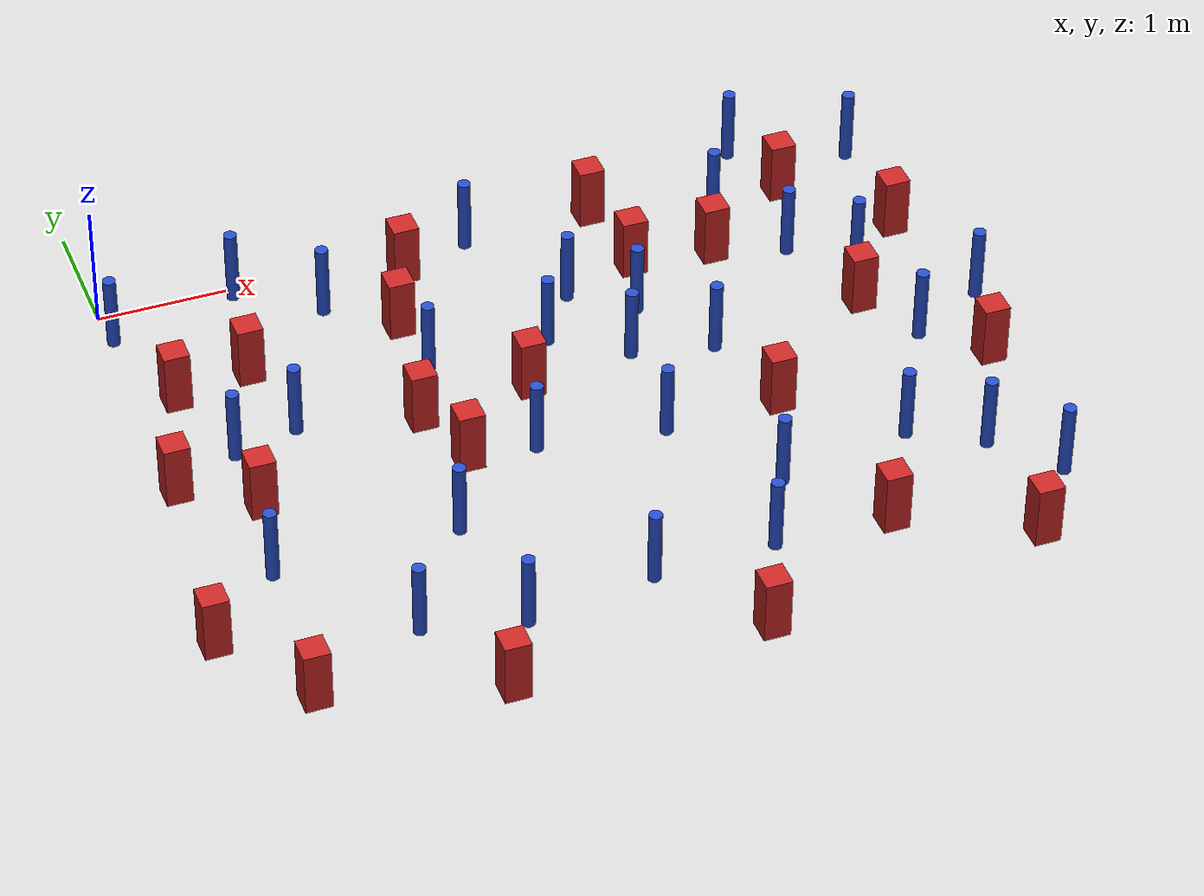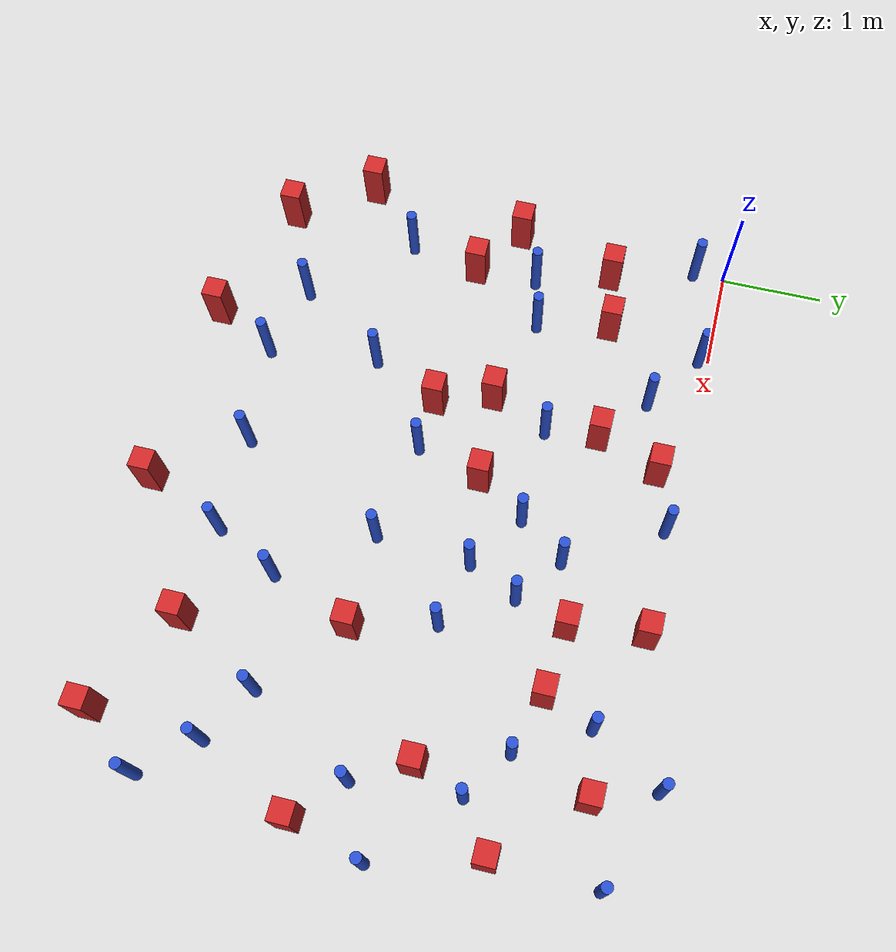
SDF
<sdf version="1.6">
 <model name="dense_82">
  <model name="square_post_obstacle3">
   <static>true</static>
   <pose>2.33314151365 -0.291361510585 -4.36207812815e-07 3.75137919937e-06 9.77721102514e-07 2.47381364184e-05</pose>
   <link name="link">
    <pose>0 0 0.25 0 -0 0</pose>
    <inertial>
     <mass>100</mass>
     <inertia>
      <ixx>0.166667</ixx>
      <ixy>0</ixy>
      <ixz>0</ixz>
      <iyy>0.166667</iyy>
      <iyz>0</iyz>
      <izz>0.166667</izz>
     </inertia>
    </inertial>
    <collision name="collision"><geometry><box><size>.2 .2 .5</size></box></geometry></collision>
    <visual name="visual">
     <geometry><box><size>.2 .2 .5</size></box></geometry>
     <material>
      <script><name>Gazebo/Red</name><uri>file://media/materials/scripts/gazebo.material</uri></script>
     </material>
    </visual>
   </link>
  </model>
  <model name="square_post_obstacle4">
   <static>true</static>
   <pose>-0.213089348339 -3.73600585675 -4.36207812815e-07 3.75137919937e-06 9.77721102514e-07 2.47381364184e-05</pose>
   <link name="link">
    <pose>0 0 0.25 0 -0 0</pose>
    <inertial>
     <mass>100</mass>
     <inertia>
      <ixx>0.166667</ixx>
      <ixy>0</ixy>
      <ixz>0</ixz>
      <iyy>0.166667</iyy>
      <iyz>0</iyz>
      <izz>0.166667</izz>
     </inertia>
    </inertial>
    <collision name="collision"><geometry><box><size>.2 .2 .5</size></box></geometry></collision>
    <visual name="visual">
     <geometry><box><size>.2 .2 .5</size></box></geometry>
     <material>
      <script><name>Gazebo/Red</name><uri>file://media/materials/scripts/gazebo.material</uri></script>
     </material>
    </visual>
   </link>
  </model>
  <model name="square_post_obstacle8">
   <static>true</static>
   <pose>0.871351405649 -1.02701307779 -4.36207812815e-07 3.75137919937e-06 9.77721102514e-07 2.47381364184e-05</pose>
   <link name="link">
    <pose>0 0 0.25 0 -0 0</pose>
    <inertial>
     <mass>100</mass>
     <inertia>
      <ixx>0.166667</ixx>
      <ixy>0</ixy>
      <ixz>0</ixz>
      <iyy>0.166667</iyy>
      <iyz>0</iyz>
      <izz>0.166667</izz>
     </inertia>
    </inertial>
    <collision name="collision"><geometry><box><size>.2 .2 .5</size></box></geometry></collision>
    <visual name="visual">
     <geometry><box><size>.2 .2 .5</size></box></geometry>
     <material>
      <script><name>Gazebo/Red</name><uri>file://media/materials/scripts/gazebo.material</uri></script>
     </material>
    </visual>
   </link>
  </model>
  <model name="pole_obstacle13">
   <static>true</static>
   <pose>0.0314348931454 -0.309550767715 -3.09024884793e-07 -7.19054271912e-07 -2.1131507514e-07 -1.93935509267e-07</pose>
   <link name="link">
    <pose>0 0 0.3 0 -0 0</pose>
    <inertial>
     <mass>1</mass>
     <inertia><ixx>0.145833</ixx><ixy>0</ixy><ixz>0</ixz><iyy>0.145833</iyy><iyz>0</iyz><izz>0.125</izz></inertia>
    </inertial>
    <collision name="collision">
     <geometry><cylinder><radius>0.05</radius><length>.6</length></cylinder></geometry>
    </collision>
    <visual name="visual">
     <geometry><cylinder><radius>0.05</radius><length>.6</length></cylinder></geometry>
     <material>
      <script><name>Gazebo/Blue</name><uri>file://media/materials/scripts/gazebo.material</uri></script>
     </material>
    </visual>
   </link>
  </model>
  <model name="pole_obstacle15">
   <static>true</static>
   <pose>2.59792775279 -2.53692966714 -3.09024884793e-07 -7.19054271912e-07 -2.11315075144e-07 -1.93935509271e-07</pose>
   <link name="link">
    <pose>0 0 0.3 0 -0 0</pose>
    <inertial>
     <mass>1</mass>
     <inertia><ixx>0.145833</ixx><ixy>0</ixy><ixz>0</ixz><iyy>0.145833</iyy><iyz>0</iyz><izz>0.125</izz></inertia>
    </inertial>
    <collision name="collision">
     <geometry><cylinder><radius>0.05</radius><length>.6</length></cylinder></geometry>
    </collision>
    <visual name="visual">
     <geometry><cylinder><radius>0.05</radius><length>.6</length></cylinder></geometry>
     <material>
      <script><name>Gazebo/Blue</name><uri>file://media/materials/scripts/gazebo.material</uri></script>
     </material>
    </visual>
   </link>
  </model>
  <model name="pole_obstacle20">
   <static>true</static>
   <pose>1.17382200154 -4.06774847225 -3.09024884793e-07 -7.19054271912e-07 -2.11315075134e-07 -1.93935509265e-07</pose>
   <link name="link">
    <pose>0 0 0.3 0 -0 0</pose>
    <inertial>
     <mass>1</mass>
     <inertia><ixx>0.145833</ixx><ixy>0</ixy><ixz>0</ixz><iyy>0.145833</iyy><iyz>0</iyz><izz>0.125</izz></inertia>
    </inertial>
    <collision name="collision">
     <geometry><cylinder><radius>0.05</radius><length>.6</length></cylinder></geometry>
    </collision>
    <visual name="visual">
     <geometry><cylinder><radius>0.05</radius><length>.6</length></cylinder></geometry>
     <material>
      <script><name>Gazebo/Blue</name><uri>file://media/materials/scripts/gazebo.material</uri></script>
     </material>
    </visual>
   </link>
  </model>
  <model name="pole_obstacle38">
   <static>true</static>
   <pose>2.89941433619 -4.12505029738 -3.09024884793e-07 -7.19054271912e-07 -2.11315075134e-07 -1.93935509266e-07</pose>
   <link name="link">
    <pose>0 0 0.3 0 -0 0</pose>
    <inertial>
     <mass>1</mass>
     <inertia><ixx>0.145833</ixx><ixy>0</ixy><ixz>0</ixz><iyy>0.145833</iyy><iyz>0</iyz><izz>0.125</izz></inertia>
    </inertial>
    <collision name="collision">
     <geometry><cylinder><radius>0.05</radius><length>.6</length></cylinder></geometry>
    </collision>
    <visual name="visual">
     <geometry><cylinder><radius>0.05</radius><length>.6</length></cylinder></geometry>
     <material>
      <script><name>Gazebo/Blue</name><uri>file://media/materials/scripts/gazebo.material</uri></script>
     </material>
    </visual>
   </link>
  </model>
  <model name="pole_obstacle41">
   <static>true</static>
   <pose>3.5569197689 -2.68449451815 -3.09024884793e-07 -7.19054271912e-07 -2.11315075144e-07 -1.93935509271e-07</pose>
   <link name="link">
    <pose>0 0 0.3 0 -0 0</pose>
    <inertial>
     <mass>1</mass>
     <inertia><ixx>0.145833</ixx><ixy>0</ixy><ixz>0</ixz><iyy>0.145833</iyy><iyz>0</iyz><izz>0.125</izz></inertia>
    </inertial>
    <collision name="collision">
     <geometry><cylinder><radius>0.05</radius><length>.6</length></cylinder></geometry>
    </collision>
    <visual name="visual">
     <geometry><cylinder><radius>0.05</radius><length>.6</length></cylinder></geometry>
     <material>
      <script><name>Gazebo/Blue</name><uri>file://media/materials/scripts/gazebo.material</uri></script>
     </material>
    </visual>
   </link>
  </model>
  <model name="pole_obstacle43">
   <static>true</static>
   <pose>5.22394746204 0.251731931537 -3.09024884793e-07 -7.19054271912e-07 -2.11315075135e-07 -1.93935509265e-07</pose>
   <link name="link">
    <pose>0 0 0.3 0 -0 0</pose>
    <inertial>
     <mass>1</mass>
     <inertia><ixx>0.145833</ixx><ixy>0</ixy><ixz>0</ixz><iyy>0.145833</iyy><iyz>0</iyz><izz>0.125</izz></inertia>
    </inertial>
    <collision name="collision">
     <geometry><cylinder><radius>0.05</radius><length>.6</length></cylinder></geometry>
    </collision>
    <visual name="visual">
     <geometry><cylinder><radius>0.05</radius><length>.6</length></cylinder></geometry>
     <material>
      <script><name>Gazebo/Blue</name><uri>file://media/materials/scripts/gazebo.material</uri></script>
     </material>
    </visual>
   </link>
  </model>
  <model name="pole_obstacle46">
   <static>true</static>
   <pose>5.18515565734 -3.32202096976 -3.09024884793e-07 -7.19054271912e-07 -2.11315075144e-07 -1.93935509269e-07</pose>
   <link name="link">
    <pose>0 0 0.3 0 -0 0</pose>
    <inertial>
     <mass>1</mass>
     <inertia><ixx>0.145833</ixx><ixy>0</ixy><ixz>0</ixz><iyy>0.145833</iyy><iyz>0</iyz><izz>0.125</izz></inertia>
    </inertial>
    <collision name="collision">
     <geometry><cylinder><radius>0.05</radius><length>.6</length></cylinder></geometry>
    </collision>
    <visual name="visual">
     <geometry><cylinder><radius>0.05</radius><length>.6</length></cylinder></geometry>
     <material>
      <script><name>Gazebo/Blue</name><uri>file://media/materials/scripts/gazebo.material</uri></script>
     </material>
    </visual>
   </link>
  </model>
  <model name="pole_obstacle47">
   <static>true</static>
   <pose>5.19799344406 -1.02992889069 -3.09024884793e-07 -7.19054271912e-07 -2.11315075127e-07 -1.93935509262e-07</pose>
   <link name="link">
    <pose>0 0 0.3 0 -0 0</pose>
    <inertial>
     <mass>1</mass>
     <inertia><ixx>0.145833</ixx><ixy>0</ixy><ixz>0</ixz><iyy>0.145833</iyy><iyz>0</iyz><izz>0.125</izz></inertia>
    </inertial>
    <collision name="collision">
     <geometry><cylinder><radius>0.05</radius><length>.6</length></cylinder></geometry>
    </collision>
    <visual name="visual">
     <geometry><cylinder><radius>0.05</radius><length>.6</length></cylinder></geometry>
     <material>
      <script><name>Gazebo/Blue</name><uri>file://media/materials/scripts/gazebo.material</uri></script>
     </material>
    </visual>
   </link>
  </model>
  <model name="pole_obstacle49">
   <static>true</static>
   <pose>4.24682617966 -1.91908120827 -3.09024884793e-07 -7.19054271912e-07 -2.11315075124e-07 -1.93935509261e-07</pose>
   <link name="link">
    <pose>0 0 0.3 0 -0 0</pose>
    <inertial>
     <mass>1</mass>
     <inertia><ixx>0.145833</ixx><ixy>0</ixy><ixz>0</ixz><iyy>0.145833</iyy><iyz>0</iyz><izz>0.125</izz></inertia>
    </inertial>
    <collision name="collision">
     <geometry><cylinder><radius>0.05</radius><length>.6</length></cylinder></geometry>
    </collision>
    <visual name="visual">
     <geometry><cylinder><radius>0.05</radius><length>.6</length></cylinder></geometry>
     <material>
      <script><name>Gazebo/Blue</name><uri>file://media/materials/scripts/gazebo.material</uri></script>
     </material>
    </visual>
   </link>
  </model>
  <model name="pole_obstacle53">
   <static>true</static>
   <pose>1.62476365895 -0.502507730217 -3.09024884793e-07 -7.19054271912e-07 -2.11315075135e-07 -1.93935509266e-07</pose>
   <link name="link">
    <pose>0 0 0.3 0 -0 0</pose>
    <inertial>
     <mass>1</mass>
     <inertia><ixx>0.145833</ixx><ixy>0</ixy><ixz>0</ixz><iyy>0.145833</iyy><iyz>0</iyz><izz>0.125</izz></inertia>
    </inertial>
    <collision name="collision">
     <geometry><cylinder><radius>0.05</radius><length>.6</length></cylinder></geometry>
    </collision>
    <visual name="visual">
     <geometry><cylinder><radius>0.05</radius><length>.6</length></cylinder></geometry>
     <material>
      <script><name>Gazebo/Blue</name><uri>file://media/materials/scripts/gazebo.material</uri></script>
     </material>
    </visual>
   </link>
  </model>
  <model name="square_post_obstacle42">
   <static>true</static>
   <pose>0.278952914524 -1.13049004628 -4.36207812815e-07 3.75137919937e-06 9.77721102514e-07 2.47381364184e-05</pose>
   <link name="link">
    <pose>0 0 0.25 0 -0 0</pose>
    <inertial>
     <mass>100</mass>
     <inertia>
      <ixx>0.166667</ixx>
      <ixy>0</ixy>
      <ixz>0</ixz>
      <iyy>0.166667</iyy>
      <iyz>0</iyz>
      <izz>0.166667</izz>
     </inertia>
    </inertial>
    <collision name="collision"><geometry><box><size>.2 .2 .5</size></box></geometry></collision>
    <visual name="visual">
     <geometry><box><size>.2 .2 .5</size></box></geometry>
     <material>
      <script><name>Gazebo/Red</name><uri>file://media/materials/scripts/gazebo.material</uri></script>
     </material>
    </visual>
   </link>
  </model>
  <model name="square_post_obstacle47">
   <static>true</static>
   <pose>4.70579254479 -4.16038542556 -4.36207812815e-07 3.75137919937e-06 9.77721102514e-07 2.47381364184e-05</pose>
   <link name="link">
    <pose>0 0 0.25 0 -0 0</pose>
    <inertial>
     <mass>100</mass>
     <inertia>
      <ixx>0.166667</ixx>
      <ixy>0</ixy>
      <ixz>0</ixz>
      <iyy>0.166667</iyy>
      <iyz>0</iyz>
      <izz>0.166667</izz>
     </inertia>
    </inertial>
    <collision name="collision"><geometry><box><size>.2 .2 .5</size></box></geometry></collision>
    <visual name="visual">
     <geometry><box><size>.2 .2 .5</size></box></geometry>
     <material>
      <script><name>Gazebo/Red</name><uri>file://media/materials/scripts/gazebo.material</uri></script>
     </material>
    </visual>
   </link>
  </model>
  <model name="pole_obstacle63">
   <static>true</static>
   <pose>3.4145873288 -0.976649345499 -3.09024884793e-07 -7.19054271912e-07 -2.11315075118e-07 -1.93935509258e-07</pose>
   <link name="link">
    <pose>0 0 0.3 0 -0 0</pose>
    <inertial>
     <mass>1</mass>
     <inertia><ixx>0.145833</ixx><ixy>0</ixy><ixz>0</ixz><iyy>0.145833</iyy><iyz>0</iyz><izz>0.125</izz></inertia>
    </inertial>
    <collision name="collision">
     <geometry><cylinder><radius>0.05</radius><length>.6</length></cylinder></geometry>
    </collision>
    <visual name="visual">
     <geometry><cylinder><radius>0.05</radius><length>.6</length></cylinder></geometry>
     <material>
      <script><name>Gazebo/Blue</name><uri>file://media/materials/scripts/gazebo.material</uri></script>
     </material>
    </visual>
   </link>
  </model>
  <model name="square_post_obstacle50">
   <static>true</static>
   <pose>5.65852767724 -4.65467436138 -4.36207812815e-07 3.75137919937e-06 9.77721102514e-07 2.47381364184e-05</pose>
   <link name="link">
    <pose>0 0 0.25 0 -0 0</pose>
    <inertial>
     <mass>100</mass>
     <inertia>
      <ixx>0.166667</ixx>
      <ixy>0</ixy>
      <ixz>0</ixz>
      <iyy>0.166667</iyy>
      <iyz>0</iyz>
      <izz>0.166667</izz>
     </inertia>
    </inertial>
    <collision name="collision"><geometry><box><size>.2 .2 .5</size></box></geometry></collision>
    <visual name="visual">
     <geometry><box><size>.2 .2 .5</size></box></geometry>
     <material>
      <script><name>Gazebo/Red</name><uri>file://media/materials/scripts/gazebo.material</uri></script>
     </material>
    </visual>
   </link>
  </model>
  <model name="pole_obstacle68">
   <static>true</static>
   <pose>0.381886724583 -3.1783384255 -3.09024884793e-07 -7.19054271912e-07 -2.11315075129e-07 -1.93935509263e-07</pose>
   <link name="link">
    <pose>0 0 0.3 0 -0 0</pose>
    <inertial>
     <mass>1</mass>
     <inertia><ixx>0.145833</ixx><ixy>0</ixy><ixz>0</ixz><iyy>0.145833</iyy><iyz>0</iyz><izz>0.125</izz></inertia>
    </inertial>
    <collision name="collision">
     <geometry><cylinder><radius>0.05</radius><length>.6</length></cylinder></geometry>
    </collision>
    <visual name="visual">
     <geometry><cylinder><radius>0.05</radius><length>.6</length></cylinder></geometry>
     <material>
      <script><name>Gazebo/Blue</name><uri>file://media/materials/scripts/gazebo.material</uri></script>
     </material>
    </visual>
   </link>
  </model>
  <model name="square_post_obstacle56">
   <static>true</static>
   <pose>5.41629758318 -0.316270551708 -4.36207812815e-07 3.75137919937e-06 9.77721102514e-07 2.47381364184e-05</pose>
   <link name="link">
    <pose>0 0 0.25 0 -0 0</pose>
    <inertial>
     <mass>100</mass>
     <inertia>
      <ixx>0.166667</ixx>
      <ixy>0</ixy>
      <ixz>0</ixz>
      <iyy>0.166667</iyy>
      <iyz>0</iyz>
      <izz>0.166667</izz>
     </inertia>
    </inertial>
    <collision name="collision"><geometry><box><size>.2 .2 .5</size></box></geometry></collision>
    <visual name="visual">
     <geometry><box><size>.2 .2 .5</size></box></geometry>
     <material>
      <script><name>Gazebo/Red</name><uri>file://media/materials/scripts/gazebo.material</uri></script>
     </material>
    </visual>
   </link>
  </model>
  <model name="square_post_obstacle63">
   <static>true</static>
   <pose>2.08169823434 -2.50607635694 -4.36207812815e-07 3.75137919937e-06 9.77721102514e-07 2.47381364184e-05</pose>
   <link name="link">
    <pose>0 0 0.25 0 -0 0</pose>
    <inertial>
     <mass>100</mass>
     <inertia>
      <ixx>0.166667</ixx>
      <ixy>0</ixy>
      <ixz>0</ixz>
      <iyy>0.166667</iyy>
      <iyz>0</iyz>
      <izz>0.166667</izz>
     </inertia>
    </inertial>
    <collision name="collision"><geometry><box><size>.2 .2 .5</size></box></geometry></collision>
    <visual name="visual">
     <geometry><box><size>.2 .2 .5</size></box></geometry>
     <material>
      <script><name>Gazebo/Red</name><uri>file://media/materials/scripts/gazebo.material</uri></script>
     </material>
    </visual>
   </link>
  </model>
  <model name="square_post_obstacle64">
   <static>true</static>
   <pose>1.58521656977 -4.85045739335 -4.36207812815e-07 3.75137919937e-06 9.77721102514e-07 2.47381364184e-05</pose>
   <link name="link">
    <pose>0 0 0.25 0 -0 0</pose>
    <inertial>
     <mass>100</mass>
     <inertia>
      <ixx>0.166667</ixx>
      <ixy>0</ixy>
      <ixz>0</ixz>
      <iyy>0.166667</iyy>
      <iyz>0</iyz>
      <izz>0.166667</izz>
     </inertia>
    </inertial>
    <collision name="collision"><geometry><box><size>.2 .2 .5</size></box></geometry></collision>
    <visual name="visual">
     <geometry><box><size>.2 .2 .5</size></box></geometry>
     <material>
      <script><name>Gazebo/Red</name><uri>file://media/materials/scripts/gazebo.material</uri></script>
     </material>
    </visual>
   </link>
  </model>
  <model name="pole_obstacle77">
   <static>true</static>
   <pose>6.34259070733 -2.00874868817 -3.09024884793e-07 -7.19054271912e-07 -2.11315075132e-07 -1.93935509263e-07</pose>
   <link name="link">
    <pose>0 0 0.3 0 -0 0</pose>
    <inertial>
     <mass>1</mass>
     <inertia><ixx>0.145833</ixx><ixy>0</ixy><ixz>0</ixz><iyy>0.145833</iyy><iyz>0</iyz><izz>0.125</izz></inertia>
    </inertial>
    <collision name="collision">
     <geometry><cylinder><radius>0.05</radius><length>.6</length></cylinder></geometry>
    </collision>
    <visual name="visual">
     <geometry><cylinder><radius>0.05</radius><length>.6</length></cylinder></geometry>
     <material>
      <script><name>Gazebo/Blue</name><uri>file://media/materials/scripts/gazebo.material</uri></script>
     </material>
    </visual>
   </link>
  </model>
  <model name="square_post_obstacle72">
   <static>true</static>
   <pose>6.13785445286 -2.70367544326 -4.36207812815e-07 3.75137919937e-06 9.77721102514e-07 2.47381364184e-05</pose>
   <link name="link">
    <pose>0 0 0.25 0 -0 0</pose>
    <inertial>
     <mass>100</mass>
     <inertia>
      <ixx>0.166667</ixx>
      <ixy>0</ixy>
      <ixz>0</ixz>
      <iyy>0.166667</iyy>
      <iyz>0</iyz>
      <izz>0.166667</izz>
     </inertia>
    </inertial>
    <collision name="collision"><geometry><box><size>.2 .2 .5</size></box></geometry></collision>
    <visual name="visual">
     <geometry><box><size>.2 .2 .5</size></box></geometry>
     <material>
      <script><name>Gazebo/Red</name><uri>file://media/materials/scripts/gazebo.material</uri></script>
     </material>
    </visual>
   </link>
  </model>
  <model name="square_post_obstacle84">
   <static>true</static>
   <pose>0.517862594368 -2.47184420044 -4.36207812815e-07 3.75137919937e-06 9.77721102514e-07 2.47381364184e-05</pose>
   <link name="link">
    <pose>0 0 0.25 0 -0 0</pose>
    <inertial>
     <mass>100</mass>
     <inertia>
      <ixx>0.166667</ixx>
      <ixy>0</ixy>
      <ixz>0</ixz>
      <iyy>0.166667</iyy>
      <iyz>0</iyz>
      <izz>0.166667</izz>
     </inertia>
    </inertial>
    <collision name="collision"><geometry><box><size>.2 .2 .5</size></box></geometry></collision>
    <visual name="visual">
     <geometry><box><size>.2 .2 .5</size></box></geometry>
     <material>
      <script><name>Gazebo/Red</name><uri>file://media/materials/scripts/gazebo.material</uri></script>
     </material>
    </visual>
   </link>
  </model>
  <model name="pole_obstacle92">
   <static>true</static>
   <pose>1.0344895102 -0.0960324451925 -3.09024884793e-07 -7.19054271912e-07 -2.11315075134e-07 -1.93935509265e-07</pose>
   <link name="link">
    <pose>0 0 0.3 0 -0 0</pose>
    <inertial>
     <mass>1</mass>
     <inertia><ixx>0.145833</ixx><ixy>0</ixy><ixz>0</ixz><iyy>0.145833</iyy><iyz>0</iyz><izz>0.125</izz></inertia>
    </inertial>
    <collision name="collision">
     <geometry><cylinder><radius>0.05</radius><length>.6</length></cylinder></geometry>
    </collision>
    <visual name="visual">
     <geometry><cylinder><radius>0.05</radius><length>.6</length></cylinder></geometry>
     <material>
      <script><name>Gazebo/Blue</name><uri>file://media/materials/scripts/gazebo.material</uri></script>
     </material>
    </visual>
   </link>
  </model>
  <model name="pole_obstacle99">
   <static>true</static>
   <pose>2.15478365586 -1.40693440886 -3.09024884793e-07 -7.19054271912e-07 -2.11315075122e-07 -1.93935509259e-07</pose>
   <link name="link">
    <pose>0 0 0.3 0 -0 0</pose>
    <inertial>
     <mass>1</mass>
     <inertia><ixx>0.145833</ixx><ixy>0</ixy><ixz>0</ixz><iyy>0.145833</iyy><iyz>0</iyz><izz>0.125</izz></inertia>
    </inertial>
    <collision name="collision">
     <geometry><cylinder><radius>0.05</radius><length>.6</length></cylinder></geometry>
    </collision>
    <visual name="visual">
     <geometry><cylinder><radius>0.05</radius><length>.6</length></cylinder></geometry>
     <material>
      <script><name>Gazebo/Blue</name><uri>file://media/materials/scripts/gazebo.material</uri></script>
     </material>
    </visual>
   </link>
  </model>
  <model name="square_post_obstacle101">
   <static>true</static>
   <pose>3.90916366934 -0.104227812113 -4.36207812815e-07 3.75137919937e-06 9.77721102514e-07 2.47381364184e-05</pose>
   <link name="link">
    <pose>0 0 0.25 0 -0 0</pose>
    <inertial>
     <mass>100</mass>
     <inertia>
      <ixx>0.166667</ixx>
      <ixy>0</ixy>
      <ixz>0</ixz>
      <iyy>0.166667</iyy>
      <iyz>0</iyz>
      <izz>0.166667</izz>
     </inertia>
    </inertial>
    <collision name="collision"><geometry><box><size>.2 .2 .5</size></box></geometry></collision>
    <visual name="visual">
     <geometry><box><size>.2 .2 .5</size></box></geometry>
     <material>
      <script><name>Gazebo/Red</name><uri>file://media/materials/scripts/gazebo.material</uri></script>
     </material>
    </visual>
   </link>
  </model>
  <model name="pole_obstacle112">
   <static>true</static>
   <pose>1.77823148418 -3.18313676283 -3.09024884793e-07 -7.19054271912e-07 -2.11315075132e-07 -1.93935509263e-07</pose>
   <link name="link">
    <pose>0 0 0.3 0 -0 0</pose>
    <inertial>
     <mass>1</mass>
     <inertia><ixx>0.145833</ixx><ixy>0</ixy><ixz>0</ixz><iyy>0.145833</iyy><iyz>0</iyz><izz>0.125</izz></inertia>
    </inertial>
    <collision name="collision">
     <geometry><cylinder><radius>0.05</radius><length>.6</length></cylinder></geometry>
    </collision>
    <visual name="visual">
     <geometry><cylinder><radius>0.05</radius><length>.6</length></cylinder></geometry>
     <material>
      <script><name>Gazebo/Blue</name><uri>file://media/materials/scripts/gazebo.material</uri></script>
     </material>
    </visual>
   </link>
  </model>
  <model name="square_post_obstacle120">
   <static>true</static>
   <pose>3.99590210295 -0.807621451331 -4.36207812815e-07 3.75137919937e-06 9.77721102514e-07 2.47381364184e-05</pose>
   <link name="link">
    <pose>0 0 0.25 0 -0 0</pose>
    <inertial>
     <mass>100</mass>
     <inertia>
      <ixx>0.166667</ixx>
      <ixy>0</ixy>
      <ixz>0</ixz>
      <iyy>0.166667</iyy>
      <iyz>0</iyz>
      <izz>0.166667</izz>
     </inertia>
    </inertial>
    <collision name="collision"><geometry><box><size>.2 .2 .5</size></box></geometry></collision>
    <visual name="visual">
     <geometry><box><size>.2 .2 .5</size></box></geometry>
     <material>
      <script><name>Gazebo/Red</name><uri>file://media/materials/scripts/gazebo.material</uri></script>
     </material>
    </visual>
   </link>
  </model>
  <model name="pole_obstacle128">
   <static>true</static>
   <pose>5.7409687875 -2.31245963606 -3.09024884793e-07 -7.19054271912e-07 -2.11315075144e-07 -1.93935509269e-07</pose>
   <link name="link">
    <pose>0 0 0.3 0 -0 0</pose>
    <inertial>
     <mass>1</mass>
     <inertia><ixx>0.145833</ixx><ixy>0</ixy><ixz>0</ixz><iyy>0.145833</iyy><iyz>0</iyz><izz>0.125</izz></inertia>
    </inertial>
    <collision name="collision">
     <geometry><cylinder><radius>0.05</radius><length>.6</length></cylinder></geometry>
    </collision>
    <visual name="visual">
     <geometry><cylinder><radius>0.05</radius><length>.6</length></cylinder></geometry>
     <material>
      <script><name>Gazebo/Blue</name><uri>file://media/materials/scripts/gazebo.material</uri></script>
     </material>
    </visual>
   </link>
  </model>
  <model name="square_post_obstacle125">
   <static>true</static>
   <pose>3.47955481679 -4.88890324637 -4.36207812815e-07 3.75137919937e-06 9.77721102514e-07 2.47381364184e-05</pose>
   <link name="link">
    <pose>0 0 0.25 0 -0 0</pose>
    <inertial>
     <mass>100</mass>
     <inertia>
      <ixx>0.166667</ixx>
      <ixy>0</ixy>
      <ixz>0</ixz>
      <iyy>0.166667</iyy>
      <iyz>0</iyz>
      <izz>0.166667</izz>
     </inertia>
    </inertial>
    <collision name="collision"><geometry><box><size>.2 .2 .5</size></box></geometry></collision>
    <visual name="visual">
     <geometry><box><size>.2 .2 .5</size></box></geometry>
     <material>
      <script><name>Gazebo/Red</name><uri>file://media/materials/scripts/gazebo.material</uri></script>
     </material>
    </visual>
   </link>
  </model>
  <model name="square_post_obstacle130">
   <static>true</static>
   <pose>1.90485653981 -1.96566548851 -4.36207812815e-07 3.75137919937e-06 9.77721102514e-07 2.47381364184e-05</pose>
   <link name="link">
    <pose>0 0 0.25 0 -0 0</pose>
    <inertial>
     <mass>100</mass>
     <inertia>
      <ixx>0.166667</ixx>
      <ixy>0</ixy>
      <ixz>0</ixz>
      <iyy>0.166667</iyy>
      <iyz>0</iyz>
      <izz>0.166667</izz>
     </inertia>
    </inertial>
    <collision name="collision"><geometry><box><size>.2 .2 .5</size></box></geometry></collision>
    <visual name="visual">
     <geometry><box><size>.2 .2 .5</size></box></geometry>
     <material>
      <script><name>Gazebo/Red</name><uri>file://media/materials/scripts/gazebo.material</uri></script>
     </material>
    </visual>
   </link>
  </model>
  <model name="square_post_obstacle131">
   <static>true</static>
   <pose>4.43698444354 -2.68411102263 -4.36207812815e-07 3.75137919937e-06 9.77721102514e-07 2.47381364184e-05</pose>
   <link name="link">
    <pose>0 0 0.25 0 -0 0</pose>
    <inertial>
     <mass>100</mass>
     <inertia>
      <ixx>0.166667</ixx>
      <ixy>0</ixy>
      <ixz>0</ixz>
      <iyy>0.166667</iyy>
      <iyz>0</iyz>
      <izz>0.166667</izz>
     </inertia>
    </inertial>
    <collision name="collision"><geometry><box><size>.2 .2 .5</size></box></geometry></collision>
    <visual name="visual">
     <geometry><box><size>.2 .2 .5</size></box></geometry>
     <material>
      <script><name>Gazebo/Red</name><uri>file://media/materials/scripts/gazebo.material</uri></script>
     </material>
    </visual>
   </link>
  </model>
  <model name="square_post_obstacle132">
   <static>true</static>
   <pose>0.27884176633 -4.46703697124 -4.36207812815e-07 3.75137919937e-06 9.77721102514e-07 2.47381364184e-05</pose>
   <link name="link">
    <pose>0 0 0.25 0 -0 0</pose>
    <inertial>
     <mass>100</mass>
     <inertia>
      <ixx>0.166667</ixx>
      <ixy>0</ixy>
      <ixz>0</ixz>
      <iyy>0.166667</iyy>
      <iyz>0</iyz>
      <izz>0.166667</izz>
     </inertia>
    </inertial>
    <collision name="collision"><geometry><box><size>.2 .2 .5</size></box></geometry></collision>
    <visual name="visual">
     <geometry><box><size>.2 .2 .5</size></box></geometry>
     <material>
      <script><name>Gazebo/Red</name><uri>file://media/materials/scripts/gazebo.material</uri></script>
     </material>
    </visual>
   </link>
  </model>
  <model name="pole_obstacle136">
   <static>true</static>
   <pose>4.8364935643 -0.397707945928 -3.09024884793e-07 -7.19054271912e-07 -2.11315075138e-07 -1.93935509266e-07</pose>
   <link name="link">
    <pose>0 0 0.3 0 -0 0</pose>
    <inertial>
     <mass>1</mass>
     <inertia><ixx>0.145833</ixx><ixy>0</ixy><ixz>0</ixz><iyy>0.145833</iyy><iyz>0</iyz><izz>0.125</izz></inertia>
    </inertial>
    <collision name="collision">
     <geometry><cylinder><radius>0.05</radius><length>.6</length></cylinder></geometry>
    </collision>
    <visual name="visual">
     <geometry><cylinder><radius>0.05</radius><length>.6</length></cylinder></geometry>
     <material>
      <script><name>Gazebo/Blue</name><uri>file://media/materials/scripts/gazebo.material</uri></script>
     </material>
    </visual>
   </link>
  </model>
  <model name="square_post_obstacle133">
   <static>true</static>
   <pose>6.06480743797 -1.03677569847 -4.36207812815e-07 3.75137919937e-06 9.77721102514e-07 2.47381364184e-05</pose>
   <link name="link">
    <pose>0 0 0.25 0 -0 0</pose>
    <inertial>
     <mass>100</mass>
     <inertia>
      <ixx>0.166667</ixx>
      <ixy>0</ixy>
      <ixz>0</ixz>
      <iyy>0.166667</iyy>
      <iyz>0</iyz>
      <izz>0.166667</izz>
     </inertia>
    </inertial>
    <collision name="collision"><geometry><box><size>.2 .2 .5</size></box></geometry></collision>
    <visual name="visual">
     <geometry><box><size>.2 .2 .5</size></box></geometry>
     <material>
      <script><name>Gazebo/Red</name><uri>file://media/materials/scripts/gazebo.material</uri></script>
     </material>
    </visual>
   </link>
  </model>
  <model name="pole_obstacle137">
   <static>true</static>
   <pose>3.85360677437 -1.30250942269 -3.09024884793e-07 -7.19054271912e-07 -2.11315075122e-07 -1.93935509259e-07</pose>
   <link name="link">
    <pose>0 0 0.3 0 -0 0</pose>
    <inertial>
     <mass>1</mass>
     <inertia><ixx>0.145833</ixx><ixy>0</ixy><ixz>0</ixz><iyy>0.145833</iyy><iyz>0</iyz><izz>0.125</izz></inertia>
    </inertial>
    <collision name="collision">
     <geometry><cylinder><radius>0.05</radius><length>.6</length></cylinder></geometry>
    </collision>
    <visual name="visual">
     <geometry><cylinder><radius>0.05</radius><length>.6</length></cylinder></geometry>
     <material>
      <script><name>Gazebo/Blue</name><uri>file://media/materials/scripts/gazebo.material</uri></script>
     </material>
    </visual>
   </link>
  </model>
  <model name="pole_obstacle140">
   <static>true</static>
   <pose>0.509441877578 -1.86415955122 -3.09024884793e-07 -7.19054271912e-07 -2.11315075142e-07 -1.93935509268e-07</pose>
   <link name="link">
    <pose>0 0 0.3 0 -0 0</pose>
    <inertial>
     <mass>1</mass>
     <inertia><ixx>0.145833</ixx><ixy>0</ixy><ixz>0</ixz><iyy>0.145833</iyy><iyz>0</iyz><izz>0.125</izz></inertia>
    </inertial>
    <collision name="collision">
     <geometry><cylinder><radius>0.05</radius><length>.6</length></cylinder></geometry>
    </collision>
    <visual name="visual">
     <geometry><cylinder><radius>0.05</radius><length>.6</length></cylinder></geometry>
     <material>
      <script><name>Gazebo/Blue</name><uri>file://media/materials/scripts/gazebo.material</uri></script>
     </material>
    </visual>
   </link>
  </model>
  <model name="pole_obstacle146">
   <static>true</static>
   <pose>6.1024087469 -4.08525546852 -3.09024884793e-07 -7.19054271911e-07 -2.1131507516e-07 -1.93935509277e-07</pose>
   <link name="link">
    <pose>0 0 0.3 0 -0 0</pose>
    <inertial>
     <mass>1</mass>
     <inertia><ixx>0.145833</ixx><ixy>0</ixy><ixz>0</ixz><iyy>0.145833</iyy><iyz>0</iyz><izz>0.125</izz></inertia>
    </inertial>
    <collision name="collision">
     <geometry><cylinder><radius>0.05</radius><length>.6</length></cylinder></geometry>
    </collision>
    <visual name="visual">
     <geometry><cylinder><radius>0.05</radius><length>.6</length></cylinder></geometry>
     <material>
      <script><name>Gazebo/Blue</name><uri>file://media/materials/scripts/gazebo.material</uri></script>
     </material>
    </visual>
   </link>
  </model>
  <model name="pole_obstacle148">
   <static>true</static>
   <pose>3.09377680978 -1.42020711301 -3.09024884793e-07 -7.19054271912e-07 -2.11315075122e-07 -1.93935509259e-07</pose>
   <link name="link">
    <pose>0 0 0.3 0 -0 0</pose>
    <inertial>
     <mass>1</mass>
     <inertia><ixx>0.145833</ixx><ixy>0</ixy><ixz>0</ixz><iyy>0.145833</iyy><iyz>0</iyz><izz>0.125</izz></inertia>
    </inertial>
    <collision name="collision">
     <geometry><cylinder><radius>0.05</radius><length>.6</length></cylinder></geometry>
    </collision>
    <visual name="visual">
     <geometry><cylinder><radius>0.05</radius><length>.6</length></cylinder></geometry>
     <material>
      <script><name>Gazebo/Blue</name><uri>file://media/materials/scripts/gazebo.material</uri></script>
     </material>
    </visual>
   </link>
  </model>
  <model name="pole_obstacle157">
   <static>true</static>
   <pose>3.62664898456 -1.77932071349 -3.09024884793e-07 -7.19054271912e-07 -2.11315075122e-07 -1.93935509259e-07</pose>
   <link name="link">
    <pose>0 0 0.3 0 -0 0</pose>
    <inertial>
     <mass>1</mass>
     <inertia><ixx>0.145833</ixx><ixy>0</ixy><ixz>0</ixz><iyy>0.145833</iyy><iyz>0</iyz><izz>0.125</izz></inertia>
    </inertial>
    <collision name="collision">
     <geometry><cylinder><radius>0.05</radius><length>.6</length></cylinder></geometry>
    </collision>
    <visual name="visual">
     <geometry><cylinder><radius>0.05</radius><length>.6</length></cylinder></geometry>
     <material>
      <script><name>Gazebo/Blue</name><uri>file://media/materials/scripts/gazebo.material</uri></script>
     </material>
    </visual>
   </link>
  </model>
  <model name="pole_obstacle158">
   <static>true</static>
   <pose>4.1411113587 -3.48642345864 -3.09024884793e-07 -7.19054271912e-07 -2.11315075144e-07 -1.93935509269e-07</pose>
   <link name="link">
    <pose>0 0 0.3 0 -0 0</pose>
    <inertial>
     <mass>1</mass>
     <inertia><ixx>0.145833</ixx><ixy>0</ixy><ixz>0</ixz><iyy>0.145833</iyy><iyz>0</iyz><izz>0.125</izz></inertia>
    </inertial>
    <collision name="collision">
     <geometry><cylinder><radius>0.05</radius><length>.6</length></cylinder></geometry>
    </collision>
    <visual name="visual">
     <geometry><cylinder><radius>0.05</radius><length>.6</length></cylinder></geometry>
     <material>
      <script><name>Gazebo/Blue</name><uri>file://media/materials/scripts/gazebo.material</uri></script>
     </material>
    </visual>
   </link>
  </model>
  <model name="pole_obstacle167">
   <static>true</static>
   <pose>6.09930372774 -0.0741186775689 -3.09024884793e-07 -7.19054271912e-07 -2.11315075117e-07 -1.93935509257e-07</pose>
   <link name="link">
    <pose>0 0 0.3 0 -0 0</pose>
    <inertial>
     <mass>1</mass>
     <inertia><ixx>0.145833</ixx><ixy>0</ixy><ixz>0</ixz><iyy>0.145833</iyy><iyz>0</iyz><izz>0.125</izz></inertia>
    </inertial>
    <collision name="collision">
     <geometry><cylinder><radius>0.05</radius><length>.6</length></cylinder></geometry>
    </collision>
    <visual name="visual">
     <geometry><cylinder><radius>0.05</radius><length>.6</length></cylinder></geometry>
     <material>
      <script><name>Gazebo/Blue</name><uri>file://media/materials/scripts/gazebo.material</uri></script>
     </material>
    </visual>
   </link>
  </model>
  <model name="pole_obstacle173">
   <static>true</static>
   <pose>3.82872090439 -4.10677792137 -3.09024884793e-07 -7.19054271912e-07 -2.11315075134e-07 -1.93935509266e-07</pose>
   <link name="link">
    <pose>0 0 0.3 0 -0 0</pose>
    <inertial>
     <mass>1</mass>
     <inertia><ixx>0.145833</ixx><ixy>0</ixy><ixz>0</ixz><iyy>0.145833</iyy><iyz>0</iyz><izz>0.125</izz></inertia>
    </inertial>
    <collision name="collision">
     <geometry><cylinder><radius>0.05</radius><length>.6</length></cylinder></geometry>
    </collision>
    <visual name="visual">
     <geometry><cylinder><radius>0.05</radius><length>.6</length></cylinder></geometry>
     <material>
      <script><name>Gazebo/Blue</name><uri>file://media/materials/scripts/gazebo.material</uri></script>
     </material>
    </visual>
   </link>
  </model>
  <model name="square_post_obstacle174">
   <static>true</static>
   <pose>-0.0113629270649 -2.11790334278 -4.36207812815e-07 3.75137919937e-06 9.77721102514e-07 2.47381364184e-05</pose>
   <link name="link">
    <pose>0 0 0.25 0 -0 0</pose>
    <inertial>
     <mass>100</mass>
     <inertia>
      <ixx>0.166667</ixx>
      <ixy>0</ixy>
      <ixz>0</ixz>
      <iyy>0.166667</iyy>
      <iyz>0</iyz>
      <izz>0.166667</izz>
     </inertia>
    </inertial>
    <collision name="collision"><geometry><box><size>.2 .2 .5</size></box></geometry></collision>
    <visual name="visual">
     <geometry><box><size>.2 .2 .5</size></box></geometry>
     <material>
      <script><name>Gazebo/Red</name><uri>file://media/materials/scripts/gazebo.material</uri></script>
     </material>
    </visual>
   </link>
  </model>
  <model name="square_post_obstacle183">
   <static>true</static>
   <pose>5.46566088187 -1.80969496166 -4.36207812815e-07 3.75137919937e-06 9.77721102514e-07 2.47381364184e-05</pose>
   <link name="link">
    <pose>0 0 0.25 0 -0 0</pose>
    <inertial>
     <mass>100</mass>
     <inertia>
      <ixx>0.166667</ixx>
      <ixy>0</ixy>
      <ixz>0</ixz>
      <iyy>0.166667</iyy>
      <iyz>0</iyz>
      <izz>0.166667</izz>
     </inertia>
    </inertial>
    <collision name="collision"><geometry><box><size>.2 .2 .5</size></box></geometry></collision>
    <visual name="visual">
     <geometry><box><size>.2 .2 .5</size></box></geometry>
     <material>
      <script><name>Gazebo/Red</name><uri>file://media/materials/scripts/gazebo.material</uri></script>
     </material>
    </visual>
   </link>
  </model>
  <model name="pole_obstacle185">
   <static>true</static>
   <pose>1.01190818145 -1.74162926878 -3.09024884793e-07 -7.19054271912e-07 -2.11315075126e-07 -1.93935509259e-07</pose>
   <link name="link">
    <pose>0 0 0.3 0 -0 0</pose>
    <inertial>
     <mass>1</mass>
     <inertia><ixx>0.145833</ixx><ixy>0</ixy><ixz>0</ixz><iyy>0.145833</iyy><iyz>0</iyz><izz>0.125</izz></inertia>
    </inertial>
    <collision name="collision">
     <geometry><cylinder><radius>0.05</radius><length>.6</length></cylinder></geometry>
    </collision>
    <visual name="visual">
     <geometry><cylinder><radius>0.05</radius><length>.6</length></cylinder></geometry>
     <material>
      <script><name>Gazebo/Blue</name><uri>file://media/materials/scripts/gazebo.material</uri></script>
     </material>
    </visual>
   </link>
  </model>
  <model name="square_post_obstacle194">
   <static>true</static>
   <pose>2.7759424216 -1.89139644886 -4.36207812815e-07 3.75137919937e-06 9.77721102514e-07 2.47381364184e-05</pose>
   <link name="link">
    <pose>0 0 0.25 0 -0 0</pose>
    <inertial>
     <mass>100</mass>
     <inertia>
      <ixx>0.166667</ixx>
      <ixy>0</ixy>
      <ixz>0</ixz>
      <iyy>0.166667</iyy>
      <iyz>0</iyz>
      <izz>0.166667</izz>
     </inertia>
    </inertial>
    <collision name="collision"><geometry><box><size>.2 .2 .5</size></box></geometry></collision>
    <visual name="visual">
     <geometry><box><size>.2 .2 .5</size></box></geometry>
     <material>
      <script><name>Gazebo/Red</name><uri>file://media/materials/scripts/gazebo.material</uri></script>
     </material>
    </visual>
   </link>
  </model>
  <model name="pole_obstacle201">
   <static>true</static>
   <pose>2.89506889192 -0.107736268058 -3.09024884793e-07 -7.19054271912e-07 -2.11315075129e-07 -1.93935509264e-07</pose>
   <link name="link">
    <pose>0 0 0.3 0 -0 0</pose>
    <inertial>
     <mass>1</mass>
     <inertia><ixx>0.145833</ixx><ixy>0</ixy><ixz>0</ixz><iyy>0.145833</iyy><iyz>0</iyz><izz>0.125</izz></inertia>
    </inertial>
    <collision name="collision">
     <geometry><cylinder><radius>0.05</radius><length>.6</length></cylinder></geometry>
    </collision>
    <visual name="visual">
     <geometry><cylinder><radius>0.05</radius><length>.6</length></cylinder></geometry>
     <material>
      <script><name>Gazebo/Blue</name><uri>file://media/materials/scripts/gazebo.material</uri></script>
     </material>
    </visual>
   </link>
  </model>
  <model name="pole_obstacle204">
   <static>true</static>
   <pose>5.70158339418 -3.62208123721 -3.09024884793e-07 -7.19054271912e-07 -2.11315075144e-07 -1.93935509269e-07</pose>
   <link name="link">
    <pose>0 0 0.3 0 -0 0</pose>
    <inertial>
     <mass>1</mass>
     <inertia><ixx>0.145833</ixx><ixy>0</ixy><ixz>0</ixz><iyy>0.145833</iyy><iyz>0</iyz><izz>0.125</izz></inertia>
    </inertial>
    <collision name="collision">
     <geometry><cylinder><radius>0.05</radius><length>.6</length></cylinder></geometry>
    </collision>
    <visual name="visual">
     <geometry><cylinder><radius>0.05</radius><length>.6</length></cylinder></geometry>
     <material>
      <script><name>Gazebo/Blue</name><uri>file://media/materials/scripts/gazebo.material</uri></script>
     </material>
    </visual>
   </link>
  </model>
  <model name="pole_obstacle207">
   <static>true</static>
   <pose>1.90978719906 -4.2489468057 -3.09024884793e-07 -7.19054271912e-07 -2.11315075134e-07 -1.93935509265e-07</pose>
   <link name="link">
    <pose>0 0 0.3 0 -0 0</pose>
    <inertial>
     <mass>1</mass>
     <inertia><ixx>0.145833</ixx><ixy>0</ixy><ixz>0</ixz><iyy>0.145833</iyy><iyz>0</iyz><izz>0.125</izz></inertia>
    </inertial>
    <collision name="collision">
     <geometry><cylinder><radius>0.05</radius><length>.6</length></cylinder></geometry>
    </collision>
    <visual name="visual">
     <geometry><cylinder><radius>0.05</radius><length>.6</length></cylinder></geometry>
     <material>
      <script><name>Gazebo/Blue</name><uri>file://media/materials/scripts/gazebo.material</uri></script>
     </material>
    </visual>
   </link>
  </model>
  <model name="square_post_obstacle208">
   <static>true</static>
   <pose>2.09291687931 -0.895944768732 -4.36207812815e-07 3.75137919937e-06 9.77721102514e-07 2.47381364184e-05</pose>
   <link name="link">
    <pose>0 0 0.25 0 -0 0</pose>
    <inertial>
     <mass>100</mass>
     <inertia>
      <ixx>0.166667</ixx>
      <ixy>0</ixy>
      <ixz>0</ixz>
      <iyy>0.166667</iyy>
      <iyz>0</iyz>
      <izz>0.166667</izz>
     </inertia>
    </inertial>
    <collision name="collision"><geometry><box><size>.2 .2 .5</size></box></geometry></collision>
    <visual name="visual">
     <geometry><box><size>.2 .2 .5</size></box></geometry>
     <material>
      <script><name>Gazebo/Red</name><uri>file://media/materials/scripts/gazebo.material</uri></script>
     </material>
    </visual>
   </link>
  </model>
  <model name="square_post_obstacle215">
   <static>true</static>
   <pose>4.63828021039 -0.869920870211 -4.36207812815e-07 3.75137919937e-06 9.77721102514e-07 2.47381364184e-05</pose>
   <link name="link">
    <pose>0 0 0.25 0 -0 0</pose>
    <inertial>
     <mass>100</mass>
     <inertia>
      <ixx>0.166667</ixx>
      <ixy>0</ixy>
      <ixz>0</ixz>
      <iyy>0.166667</iyy>
      <iyz>0</iyz>
      <izz>0.166667</izz>
     </inertia>
    </inertial>
    <collision name="collision"><geometry><box><size>.2 .2 .5</size></box></geometry></collision>
    <visual name="visual">
     <geometry><box><size>.2 .2 .5</size></box></geometry>
     <material>
      <script><name>Gazebo/Red</name><uri>file://media/materials/scripts/gazebo.material</uri></script>
     </material>
    </visual>
   </link>
  </model>
  <model name="pole_obstacle213">
   <static>true</static>
   <pose>5.64551000976 -1.33811997922 -3.09024884793e-07 -7.19054271912e-07 -2.11315075124e-07 -1.93935509261e-07</pose>
   <link name="link">
    <pose>0 0 0.3 0 -0 0</pose>
    <inertial>
     <mass>1</mass>
     <inertia><ixx>0.145833</ixx><ixy>0</ixy><ixz>0</ixz><iyy>0.145833</iyy><iyz>0</iyz><izz>0.125</izz></inertia>
    </inertial>
    <collision name="collision">
     <geometry><cylinder><radius>0.05</radius><length>.6</length></cylinder></geometry>
    </collision>
    <visual name="visual">
     <geometry><cylinder><radius>0.05</radius><length>.6</length></cylinder></geometry>
     <material>
      <script><name>Gazebo/Blue</name><uri>file://media/materials/scripts/gazebo.material</uri></script>
     </material>
    </visual>
   </link>
  </model>
 </model>
</sdf>
